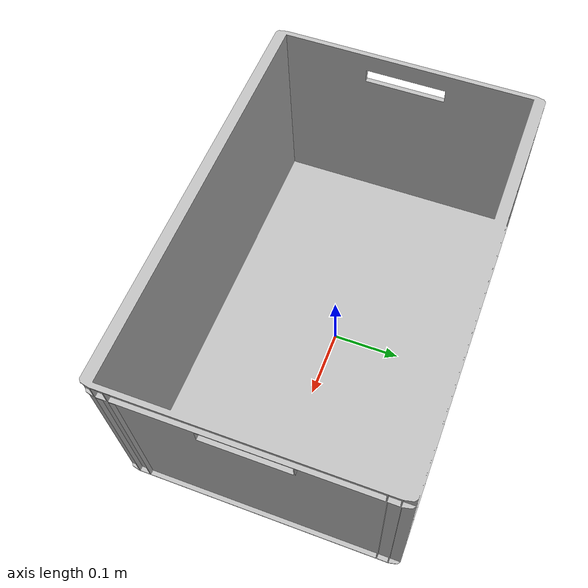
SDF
<?xml version="1.0"?>
<sdf version="1.4">

  <model name="European container Type D">

    <static>false</static>

    <link name="Container_D_structure">

      <pose>0 0 0 0 0 -1.57079632679</pose>

      <collision name="container_collision">
        <geometry>
                <box>
                  <size>.30 .40 .15</size>
                </box>
        </geometry>
      </collision>
      <visual name="container_D_visual">
        <geometry>
          <mesh>
            <uri>model://eurocontainer_D/meshes/EuroContainer_D.dae</uri>
          </mesh>
        </geometry>

      </visual>

    </link>

  </model>
</sdf>
